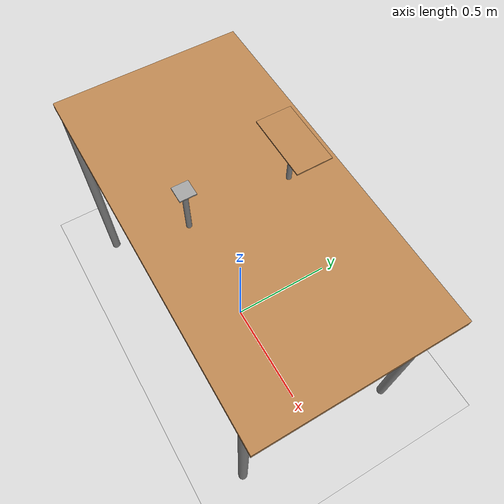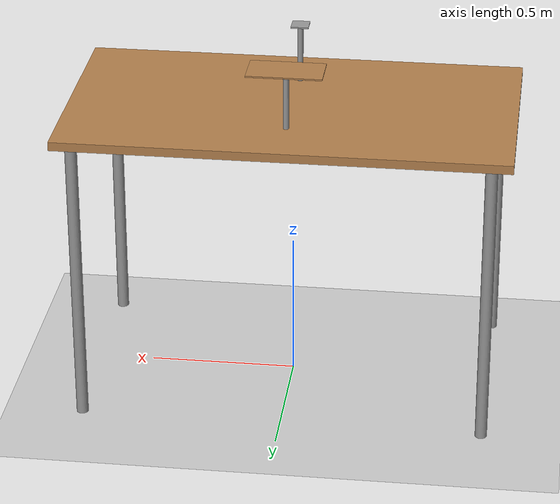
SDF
<sdf version="1.8">
 <world name="full_env_simpler">
  <model name="ground_plane">
   <static>true</static>
   <link name="link">
    <collision name="collision">
     <geometry><plane><normal>0 0 1</normal><size>10 10</size></plane></geometry>
    </collision>
    <visual name="visual">
     <geometry><plane><normal>0 0 1</normal><size>10 10</size></plane></geometry>
     <material>
      <ambient>0.8 0.8 0.8 1</ambient>
      <diffuse>0.8 0.8 0.8 1</diffuse>
      <specular>0.5 0.5 0.5 1</specular>
     </material>
    </visual>
   </link>
  </model>
  <model name="wood_object">
   <plugin filename="libignition-gazebo-pose-publisher-system.so" name="ignition::gazebo::systems::PosePublisher">
    <publish_link_pose>true</publish_link_pose>
    <update_frequency>0.5</update_frequency>
    <topic>/object/pose/info</topic>
   </plugin>
   <link name="wood_ref">
    <pose>0 0.2 1.22 0 0 0</pose>
    <collision name="platform_collision">
     <geometry><box><size>0.06 0.06 0.00005</size></box></geometry>
    </collision>
    <visual name="platform_visual">
     <geometry><box><size>0.06 0.06 0.00005</size></box></geometry>
     <material>
      <diffuse>0.5 0.5 0.5</diffuse>
      <script><uri>file://media/materials/scripts/gazebo.material</uri><name>Gazebo/Grey</name></script>
     </material>
    </visual>
   </link>
   <link name="wood">
    <pose relative_to="wood_ref">0 0 0.00005 0 0 0</pose>
    <collision name="surface">
     <geometry><box><size>0.25 0.1333 0.0050</size></box></geometry>
     <surface><friction><ode><mu>0.6</mu><mu2>0.6</mu2></ode></friction></surface>
    </collision>
    <visual name="visual1">
     <geometry><box><size>0.25 0.1333 0.005</size></box></geometry>
     <material>
      <diffuse>1.0 1.0 1.0</diffuse>
      <script><uri>file://media/materials/scripts/gazebo.material</uri><name>Gazebo/Wood</name></script>
      <pbr>
       <metal>
        <albedo_map>https://fuel.gazebosim.org/1.0/openrobotics/models/table/4/files/Table_Diffuse.jpg</albedo_map>
       </metal>
      </pbr>
     </material>
    </visual>
   </link>
  </model>
  <model name="Table">
   <static>true</static>
   <link name="table_link">
    <collision name="surface">
     <pose>0 0 1.0 0 0 0</pose>
     <geometry><box><size>1.5 0.8 0.03</size></box></geometry>
     <surface><friction><ode><mu>0.6</mu><mu2>0.6</mu2></ode></friction></surface>
    </collision>
    <visual name="visual1">
     <pose>0 0 1.0 0 0 0</pose>
     <geometry><box><size>1.5 0.8 0.03</size></box></geometry>
     <material>
      <diffuse>1.0 1.0 1.0</diffuse>
      <script><uri>file://media/materials/scripts/gazebo.material</uri><name>Gazebo/Wood</name></script>
      <pbr>
       <metal>
        <albedo_map>https://fuel.gazebosim.org/1.0/openrobotics/models/table/4/files/Table_Diffuse.jpg</albedo_map>
       </metal>
      </pbr>
     </material>
    </visual>
    <collision name="front_left_leg_collision">
     <pose>0.68 0.38 0.5 0 0 0</pose>
     <geometry><cylinder><radius>0.02</radius><length>1.0</length></cylinder></geometry>
    </collision>
    <visual name="front_left_leg_visual">
     <pose>0.68 0.38 0.5 0 0 0</pose>
     <geometry><cylinder><radius>0.02</radius><length>1.0</length></cylinder></geometry>
     <material>
      <diffuse>0.5 0.5 0.5</diffuse>
      <script><uri>file://media/materials/scripts/gazebo.material</uri><name>Gazebo/Grey</name></script>
     </material>
    </visual>
    <collision name="front_right_leg_collision">
     <pose>0.68 -0.38 0.5 0 0 0</pose>
     <geometry><cylinder><radius>0.02</radius><length>1.0</length></cylinder></geometry>
    </collision>
    <visual name="front_right_leg_visual">
     <pose>0.68 -0.38 0.5 0 0 0</pose>
     <geometry><cylinder><radius>0.02</radius><length>1.0</length></cylinder></geometry>
     <material>
      <diffuse>0.5 0.5 0.5</diffuse>
      <script><uri>file://media/materials/scripts/gazebo.material</uri><name>Gazebo/Grey</name></script>
     </material>
    </visual>
    <collision name="back_right_leg_collision">
     <pose>-0.68 -0.38 0.5 0 0 0</pose>
     <geometry><cylinder><radius>0.02</radius><length>1.0</length></cylinder></geometry>
    </collision>
    <visual name="back_right_leg_visual">
     <pose>-0.68 -0.38 0.5 0 0 0</pose>
     <geometry><cylinder><radius>0.02</radius><length>1.0</length></cylinder></geometry>
     <material>
      <diffuse>0.5 0.5 0.5</diffuse>
      <script><uri>file://media/materials/scripts/gazebo.material</uri><name>Gazebo/Grey</name></script>
     </material>
    </visual>
    <collision name="back_left_leg_collision">
     <pose>-0.68 0.38 0.5 0 0 0</pose>
     <geometry><cylinder><radius>0.02</radius><length>1.0</length></cylinder></geometry>
    </collision>
    <visual name="back_left_leg_visual">
     <pose>-0.68 0.38 0.5 0 0 0</pose>
     <geometry><cylinder><radius>0.02</radius><length>1.0</length></cylinder></geometry>
     <material>
      <diffuse>0.5 0.5 0.5</diffuse>
      <script><uri>file://media/materials/scripts/gazebo.material</uri><name>Gazebo/Grey</name></script>
     </material>
    </visual>
   </link>
   <link name="body_support_start">
    <pose relative_to="table_link">0 0.2 1.1150 0 0 0</pose>
    <collision name="body_collision">
     <geometry><cylinder><radius>0.01</radius><length>0.2</length></cylinder></geometry>
    </collision>
    <visual name="body_visual">
     <geometry><cylinder><radius>0.01</radius><length>0.2</length></cylinder></geometry>
     <material>
      <diffuse>0.5 0.5 0.5</diffuse>
      <script><uri>file://media/materials/scripts/gazebo.material</uri><name>Gazebo/Grey</name></script>
     </material>
    </visual>
   </link>
   <link name="platform_support_start">
    <pose relative_to="body_support_start">0 0 0.1025 0 0 0</pose>
    <collision name="platform_collision"><geometry><box><size>0.06 0.06 0.005</size></box></geometry></collision>
    <visual name="platform_visual">
     <geometry><box><size>0.06 0.06 0.005</size></box></geometry>
     <material>
      <diffuse>0.5 0.5 0.5</diffuse>
      <script><uri>file://media/materials/scripts/gazebo.material</uri><name>Gazebo/Grey</name></script>
     </material>
    </visual>
   </link>
   <link name="body_support_goal">
    <pose relative_to="table_link">0 -0.2 1.115 0 0 0</pose>
    <collision name="body_collision">
     <geometry><cylinder><radius>0.01</radius><length>0.2</length></cylinder></geometry>
    </collision>
    <visual name="body_visual">
     <geometry><cylinder><radius>0.01</radius><length>0.2</length></cylinder></geometry>
     <material>
      <diffuse>0.5 0.5 0.5</diffuse>
      <script><uri>file://media/materials/scripts/gazebo.material</uri><name>Gazebo/Grey</name></script>
     </material>
    </visual>
   </link>
   <link name="platform_support_goal">
    <pose relative_to="body_support_goal">0 0 0.1025 0 0 0</pose>
    <collision name="platform_collision"><geometry><box><size>0.06 0.06 0.005</size></box></geometry></collision>
    <visual name="platform_visual">
     <geometry><box><size>0.06 0.06 0.005</size></box></geometry>
     <material>
      <diffuse>0.5 0.5 0.5</diffuse>
      <script><uri>file://media/materials/scripts/gazebo.material</uri><name>Gazebo/Grey</name></script>
     </material>
    </visual>
   </link>
   <joint name="support_table_start" type="fixed">
    <parent>table_link</parent>
    <child>body_support_start</child>
    <pose>0 0.2 1.115 0 0 0</pose>
   </joint>
   <joint name="platform_body_start" type="fixed">
    <parent>body_support_start</parent>
    <child>platform_support_start</child>
    <pose>0 0 0.1025 0 0 0</pose>
   </joint>
   <joint name="support_table_goal" type="fixed">
    <parent>table_link</parent>
    <child>body_support_goal</child>
    <pose>0 -0.2 1.115 0 0 0</pose>
   </joint>
   <joint name="platform_body_goal" type="fixed">
    <parent>body_support_goal</parent>
    <child>platform_support_goal</child>
    <pose>0 0 0.1025 0 0 0</pose>
   </joint>
  </model>
 </world>
</sdf>
